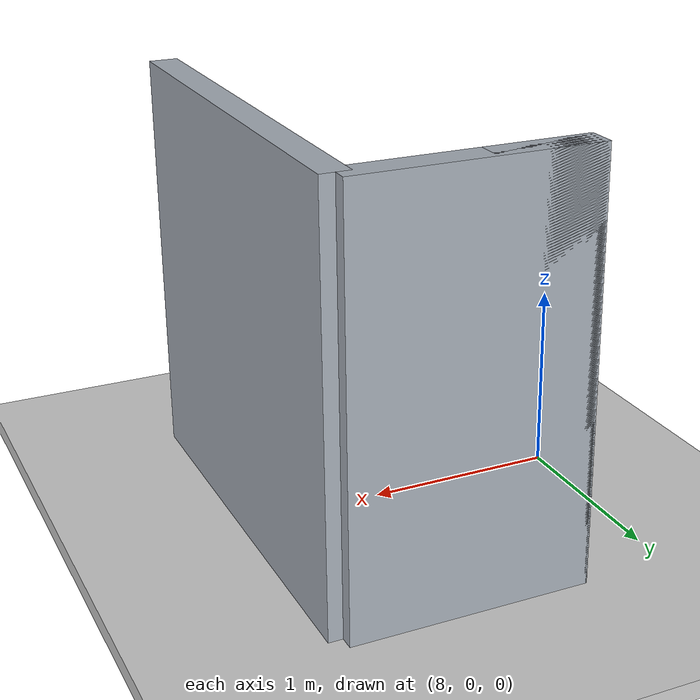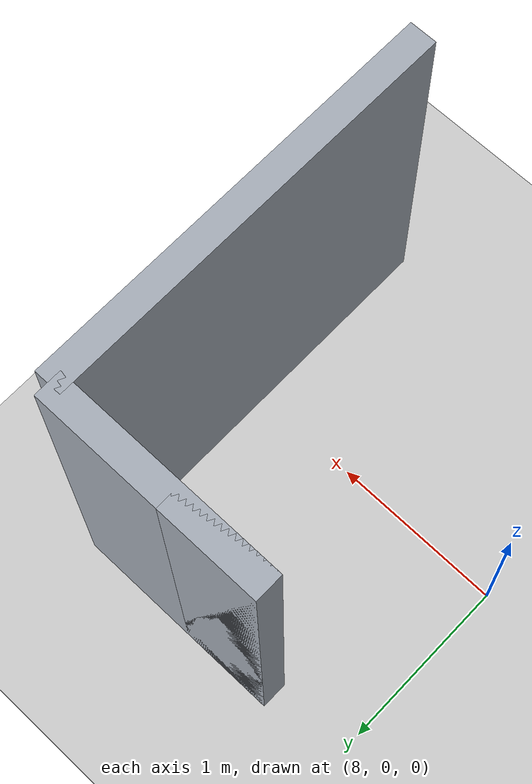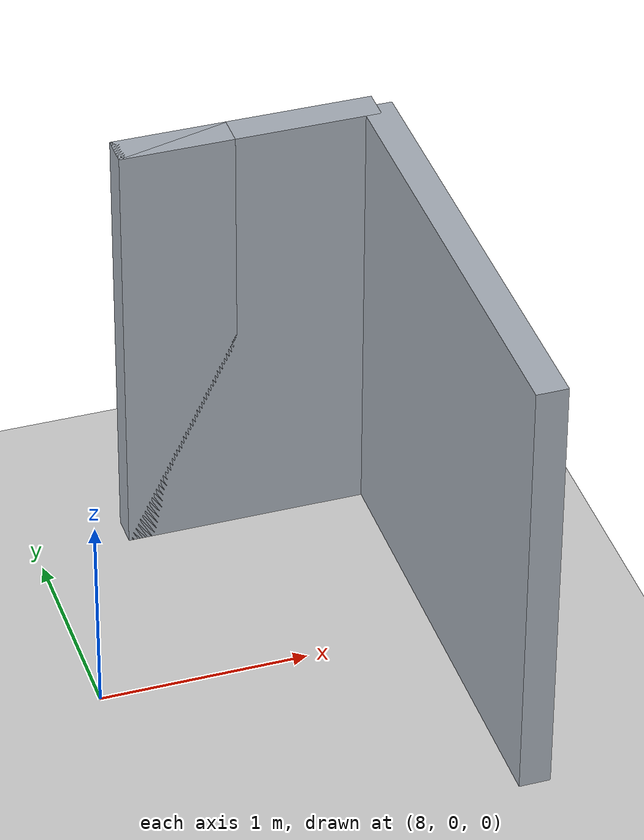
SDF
<sdf version="1.9">
 <world name="default">
  <model name="ground_plane">
   <static>true</static>
   <pose>4.85 0 -0.05 0 0 0</pose>
   <link name="body">
    <collision name="collision"><geometry><box><size>13.7 12 0.1</size></box></geometry></collision>
    <visual name="visual">
     <geometry><box><size>13.7 12 0.1</size></box></geometry>
     <material><ambient>0.8 0.8 0.8 1</ambient><diffuse>0.8 0.8 0.8 1</diffuse></material>
    </visual>
   </link>
  </model>
  <model name="end_wall">
   <static>true</static>
   <pose>9.7 0 1.1 0 0 0</pose>
   <link name="body">
    <collision name="collision"><geometry><box><size>0.15 2.3 2.2</size></box></geometry></collision>
    <visual name="visual">
     <geometry><box><size>0.15 2.3 2.2</size></box></geometry>
     <material><ambient>0.65 0.68 0.72 1</ambient><diffuse>0.65 0.68 0.72 1</diffuse></material>
    </visual>
   </link>
  </model>
  <model name="jamb_1_2_1">
   <static>true</static>
   <pose>8.725 1.15 1.1 0 0 0</pose>
   <link name="body">
    <collision name="collision"><geometry><box><size>0.55 0.15 2.2</size></box></geometry></collision>
    <visual name="visual">
     <geometry><box><size>0.55 0.15 2.2</size></box></geometry>
     <material><ambient>0.65 0.68 0.72 1</ambient><diffuse>0.65 0.68 0.72 1</diffuse></material>
    </visual>
   </link>
  </model>
  <model name="hall_end_1">
   <static>true</static>
   <pose>9.075 1.15 1.1 0 0 0</pose>
   <link name="body">
    <collision name="collision"><geometry><box><size>1.25 0.15 2.2</size></box></geometry></collision>
    <visual name="visual">
     <geometry><box><size>1.25 0.15 2.2</size></box></geometry>
     <material><ambient>0.65 0.68 0.72 1</ambient><diffuse>0.65 0.68 0.72 1</diffuse></material>
    </visual>
   </link>
  </model>
 </world>
</sdf>
